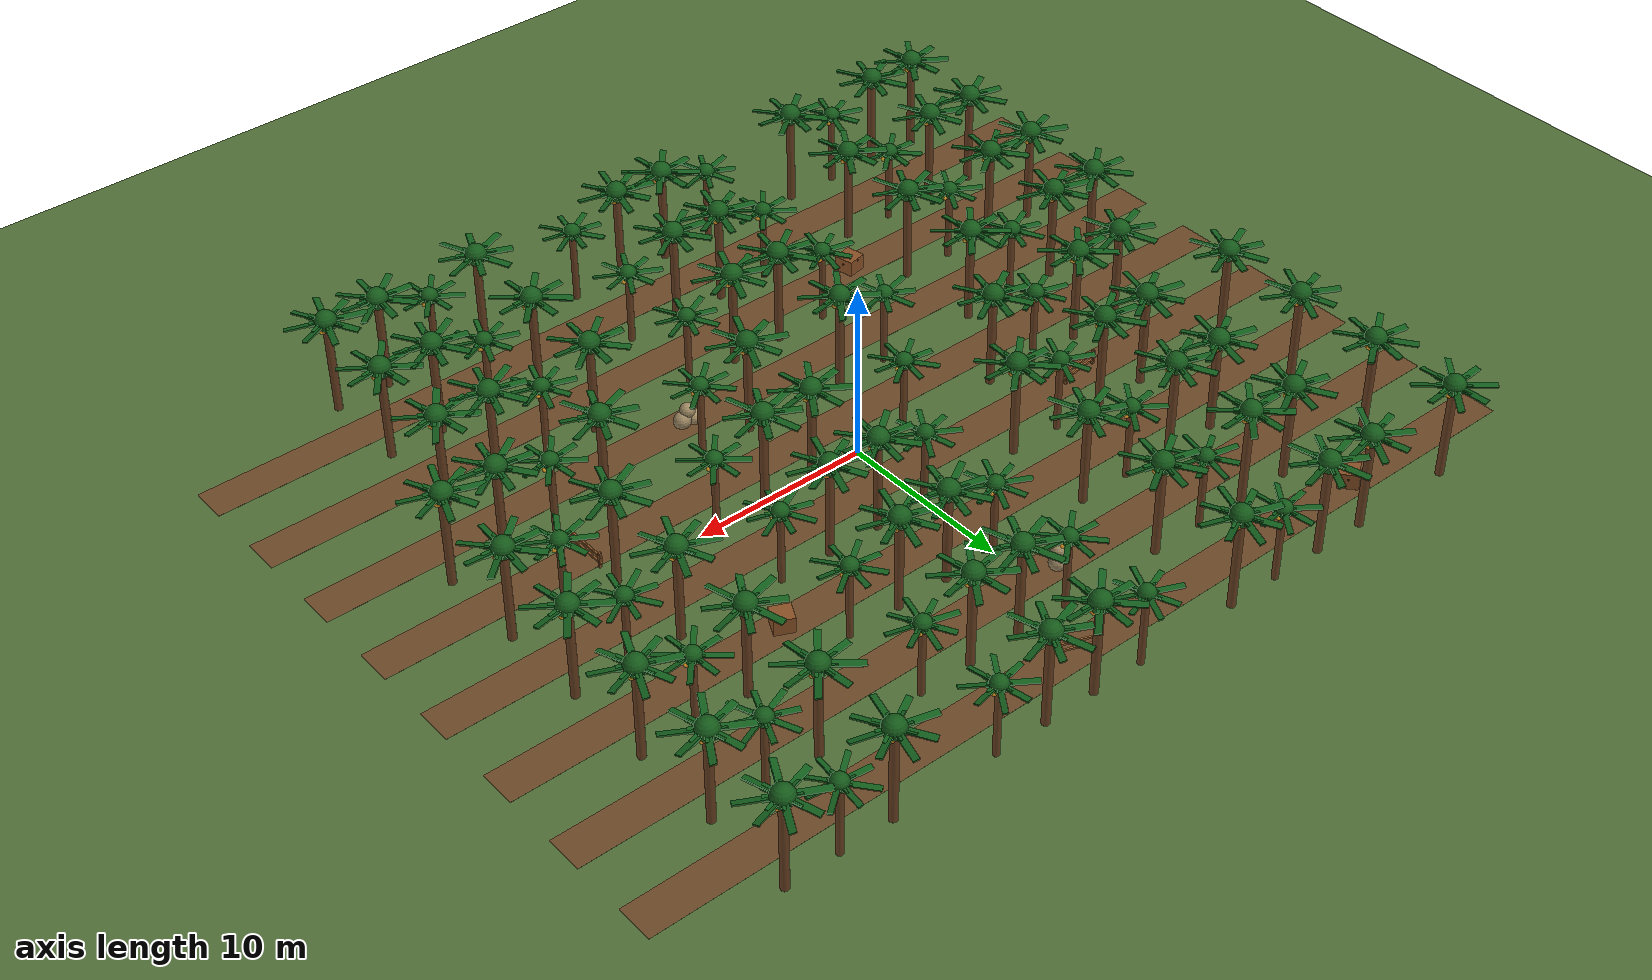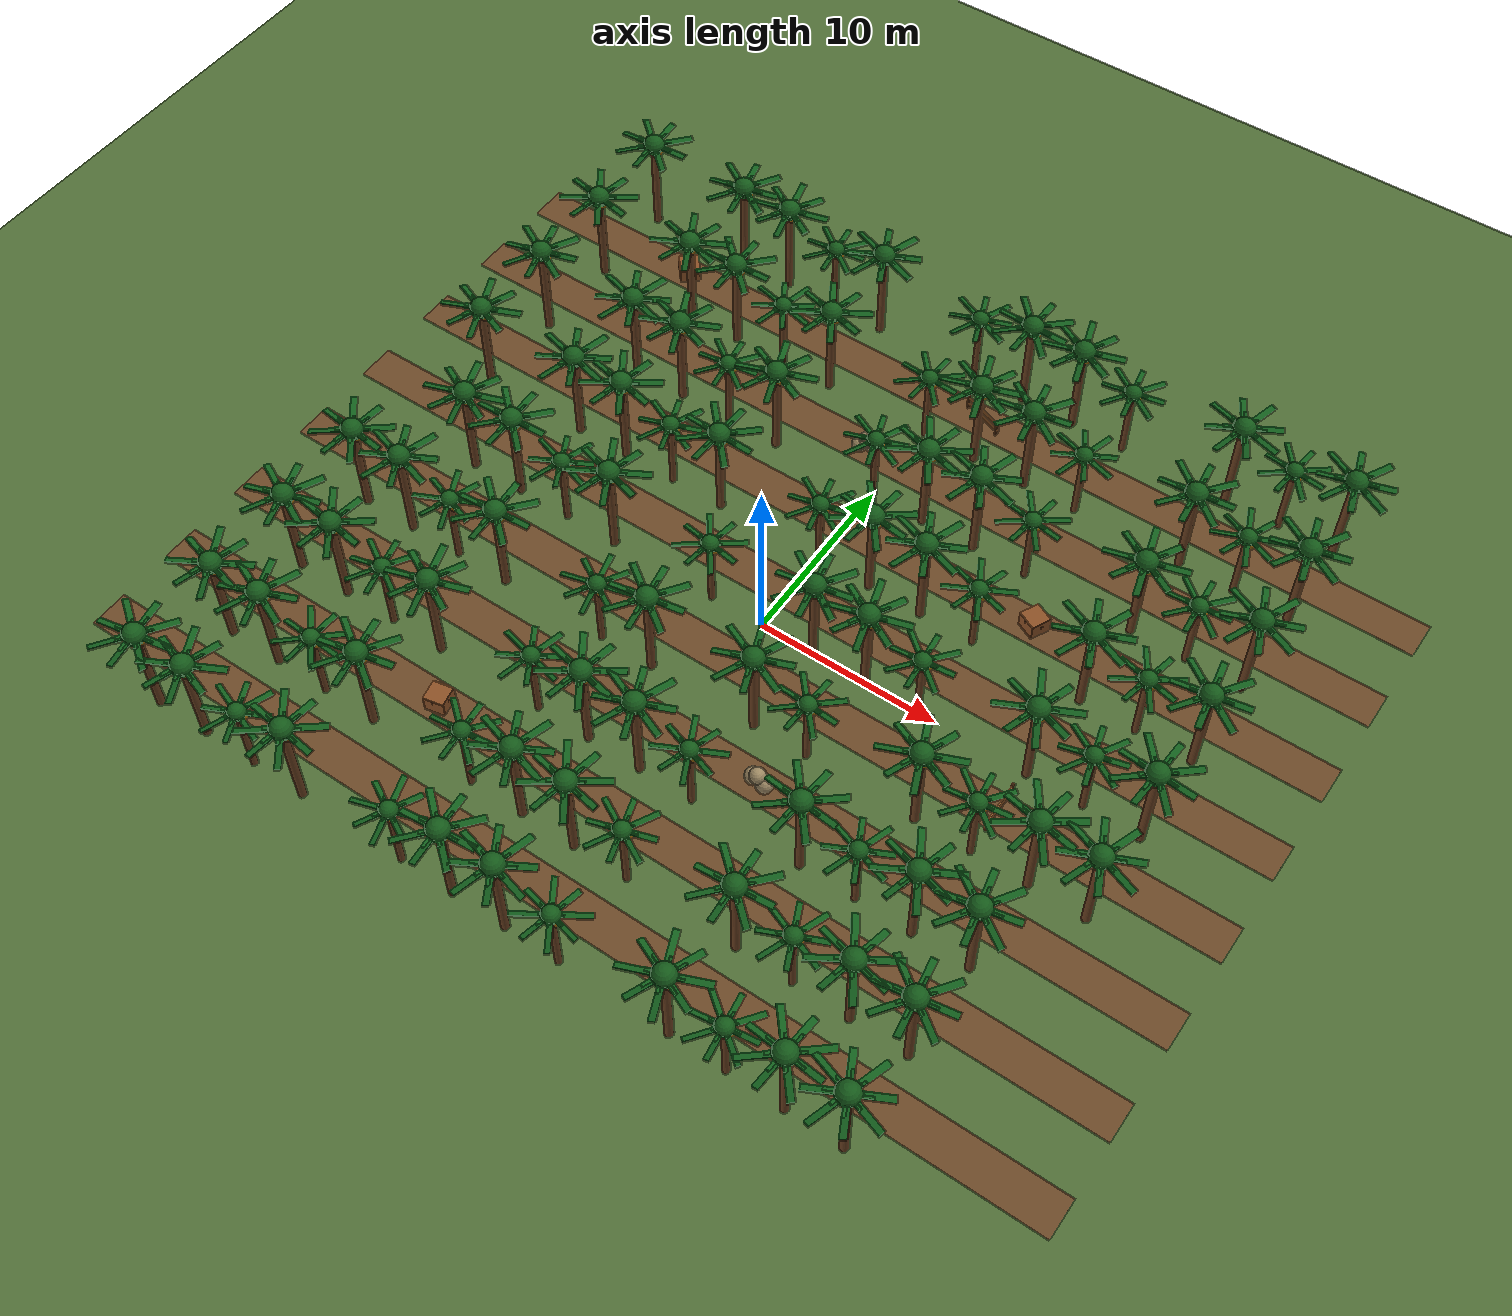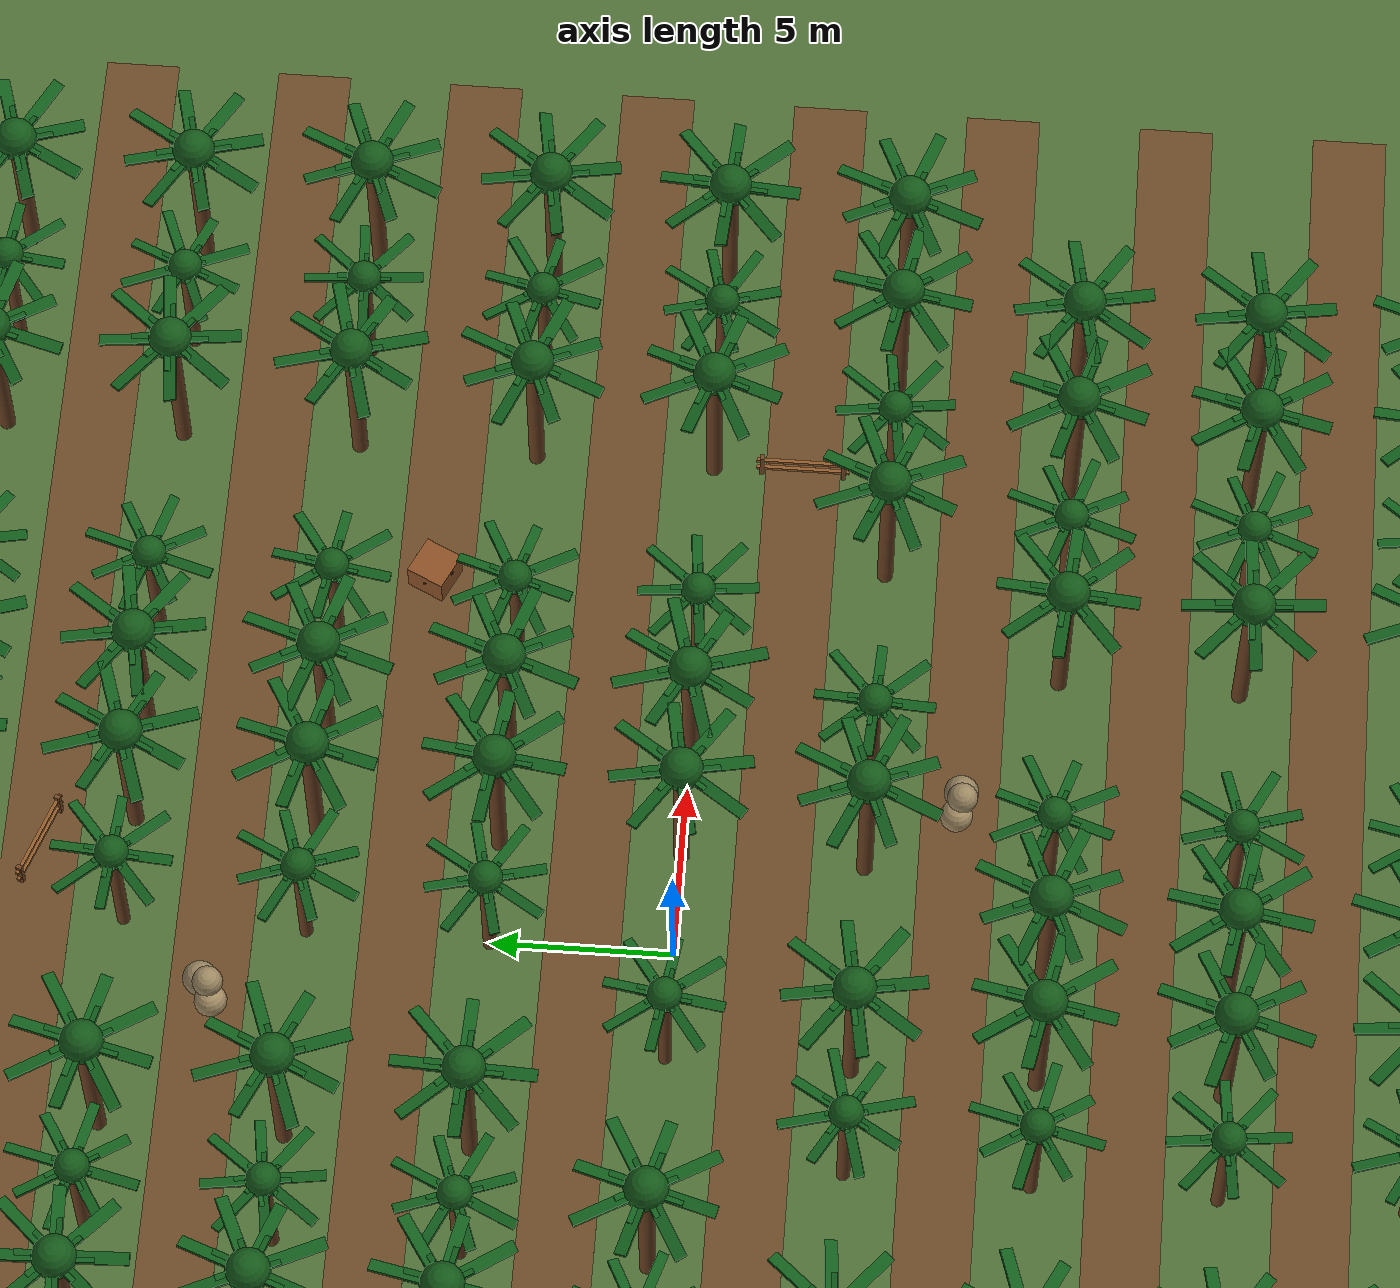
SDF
<sdf version="1.9">
 <world name="plantation">
  <physics name="uav_physics" type="ignored">
   <max_step_size>0.001</max_step_size>
   <real_time_factor>1.0</real_time_factor>
  </physics>
  <plugin filename="gz-sim-physics-system" name="gz::sim::systems::Physics"/>
  <plugin filename="gz-sim-sensors-system" name="gz::sim::systems::Sensors">
   <render_engine>ogre2</render_engine>
  </plugin>
  <plugin filename="gz-sim-scene-broadcaster-system" name="gz::sim::systems::SceneBroadcaster"/>
  <plugin filename="gz-sim-user-commands-system" name="gz::sim::systems::UserCommands"/>
  <scene>
   <ambient>0.36 0.38 0.40 1</ambient>
   <background>0.70 0.82 0.94 1</background>
   <shadows>true</shadows>
  </scene>
  <light type="directional" name="sun_key">
   <pose>-10 -10 18 0.35 0.55 -0.75</pose>
   <diffuse>0.95 0.90 0.78 1</diffuse>
   <specular>0.25 0.24 0.20 1</specular>
   <attenuation>
    <range>1000</range>
    <constant>0.9</constant>
    <linear>0.01</linear>
    <quadratic>0.001</quadratic>
   </attenuation>
   <direction>-0.55 0.25 -0.80</direction>
  </light>
  <model name="textured_ground">
   <static>true</static>
   <link name="ground">
    <collision name="collision">
     <geometry><plane><normal>0 0 1</normal><size>60 60</size></plane></geometry>
    </collision>
    <visual name="grass_soil">
     <geometry><plane><normal>0 0 1</normal><size>60 60</size></plane></geometry>
     <material>
      <ambient>0.26 0.34 0.18 1</ambient>
      <diffuse>0.32 0.44 0.22 1</diffuse>
      <specular>0.05 0.05 0.04 1</specular>
     </material>
    </visual>
   </link>
  </model>
  <model name="soil_lanes">
   <static>true</static>
   <link name="lanes">
    <visual name="lane_m17_5">
     <pose>0 -17.5 0.006 0 0 0</pose>
     <geometry><box><size>54 2.1 0.01</size></box></geometry>
     <material><ambient>0.30 0.20 0.11 1</ambient><diffuse>0.43 0.29 0.16 1</diffuse></material>
    </visual>
    <visual name="lane_m12_5">
     <pose>0 -12.5 0.006 0 0 0</pose>
     <geometry><box><size>54 2.1 0.01</size></box></geometry>
     <material><ambient>0.30 0.20 0.11 1</ambient><diffuse>0.43 0.29 0.16 1</diffuse></material>
    </visual>
    <visual name="lane_m7_5">
     <pose>0 -7.5 0.006 0 0 0</pose>
     <geometry><box><size>54 2.1 0.01</size></box></geometry>
     <material><ambient>0.30 0.20 0.11 1</ambient><diffuse>0.43 0.29 0.16 1</diffuse></material>
    </visual>
    <visual name="lane_m2_5">
     <pose>0 -2.5 0.006 0 0 0</pose>
     <geometry><box><size>54 2.1 0.01</size></box></geometry>
     <material><ambient>0.30 0.20 0.11 1</ambient><diffuse>0.43 0.29 0.16 1</diffuse></material>
    </visual>
    <visual name="lane_2_5">
     <pose>0 2.5 0.006 0 0 0</pose>
     <geometry><box><size>54 2.1 0.01</size></box></geometry>
     <material><ambient>0.30 0.20 0.11 1</ambient><diffuse>0.43 0.29 0.16 1</diffuse></material>
    </visual>
    <visual name="lane_7_5">
     <pose>0 7.5 0.006 0 0 0</pose>
     <geometry><box><size>54 2.1 0.01</size></box></geometry>
     <material><ambient>0.30 0.20 0.11 1</ambient><diffuse>0.43 0.29 0.16 1</diffuse></material>
    </visual>
    <visual name="lane_12_5">
     <pose>0 12.5 0.006 0 0 0</pose>
     <geometry><box><size>54 2.1 0.01</size></box></geometry>
     <material><ambient>0.30 0.20 0.11 1</ambient><diffuse>0.43 0.29 0.16 1</diffuse></material>
    </visual>
    <visual name="lane_17_5">
     <pose>0 17.5 0.006 0 0 0</pose>
     <geometry><box><size>54 2.1 0.01</size></box></geometry>
     <material><ambient>0.30 0.20 0.11 1</ambient><diffuse>0.43 0.29 0.16 1</diffuse></material>
    </visual>
   </link>
  </model>
  <include><name>tree_00_00</name><uri>model://oil_palm</uri><pose>-21 -20 0 0 0 0.18</pose></include>
  <include><name>tree_00_01</name><uri>model://oil_palm</uri><pose>-18 -20 0 0 0 -0.31</pose></include>
  <include><name>tree_00_02</name><uri>model://oil_palm_small</uri><pose>-15 -20 0 0 0 0.44</pose></include>
  <include><name>tree_00_03</name><uri>model://oil_palm</uri><pose>-12 -20 0 0 0 -0.12</pose></include>
  <include><name>tree_00_05</name><uri>model://oil_palm_small</uri><pose>-6 -20 0 0 0 -0.48</pose></include>
  <include><name>tree_00_06</name><uri>model://oil_palm</uri><pose>-3 -20 0 0 0 0.09</pose></include>
  <include><name>tree_00_07</name><uri>model://oil_palm</uri><pose>0 -20 0 0 0 0.53</pose></include>
  <include><name>tree_00_08</name><uri>model://oil_palm_small</uri><pose>3 -20 0 0 0 -0.21</pose></include>
  <include><name>tree_00_10</name><uri>model://oil_palm</uri><pose>9 -20 0 0 0 -0.40</pose></include>
  <include><name>tree_00_11</name><uri>model://oil_palm_small</uri><pose>12 -20 0 0 0 0.14</pose></include>
  <include><name>tree_00_12</name><uri>model://oil_palm</uri><pose>15 -20 0 0 0 -0.08</pose></include>
  <include><name>tree_00_13</name><uri>model://oil_palm</uri><pose>18 -20 0 0 0 0.47</pose></include>
  <include><name>tree_01_00</name><uri>model://oil_palm</uri><pose>-21 -15 0 0 0 -0.26</pose></include>
  <include><name>tree_01_01</name><uri>model://oil_palm</uri><pose>-18 -15 0 0 0 0.39</pose></include>
  <include><name>tree_01_02</name><uri>model://oil_palm_small</uri><pose>-15 -15 0 0 0 -0.05</pose></include>
  <include><name>tree_01_03</name><uri>model://oil_palm</uri><pose>-12 -15 0 0 0 0.21</pose></include>
  <include><name>tree_01_05</name><uri>model://oil_palm_small</uri><pose>-6 -15 0 0 0 0.11</pose></include>
  <include><name>tree_01_06</name><uri>model://oil_palm</uri><pose>-3 -15 0 0 0 0.50</pose></include>
  <include><name>tree_01_07</name><uri>model://oil_palm</uri><pose>0 -15 0 0 0 -0.17</pose></include>
  <include><name>tree_01_08</name><uri>model://oil_palm_small</uri><pose>3 -15 0 0 0 0.30</pose></include>
  <include><name>tree_01_10</name><uri>model://oil_palm</uri><pose>9 -15 0 0 0 0.07</pose></include>
  <include><name>tree_01_11</name><uri>model://oil_palm_small</uri><pose>12 -15 0 0 0 0.42</pose></include>
  <include><name>tree_01_12</name><uri>model://oil_palm</uri><pose>15 -15 0 0 0 -0.23</pose></include>
  <include><name>tree_01_13</name><uri>model://oil_palm</uri><pose>18 -15 0 0 0 0.16</pose></include>
  <include><name>tree_02_00</name><uri>model://oil_palm</uri><pose>-21 -10 0 0 0 0.33</pose></include>
  <include><name>tree_02_01</name><uri>model://oil_palm</uri><pose>-18 -10 0 0 0 -0.14</pose></include>
  <include><name>tree_02_02</name><uri>model://oil_palm_small</uri><pose>-15 -10 0 0 0 0.25</pose></include>
  <include><name>tree_02_03</name><uri>model://oil_palm</uri><pose>-12 -10 0 0 0 -0.47</pose></include>
  <include><name>tree_02_05</name><uri>model://oil_palm_small</uri><pose>-6 -10 0 0 0 0.55</pose></include>
  <include><name>tree_02_06</name><uri>model://oil_palm</uri><pose>-3 -10 0 0 0 -0.19</pose></include>
  <include><name>tree_02_07</name><uri>model://oil_palm</uri><pose>0 -10 0 0 0 0.40</pose></include>
  <include><name>tree_02_08</name><uri>model://oil_palm_small</uri><pose>3 -10 0 0 0 -0.32</pose></include>
  <include><name>tree_02_10</name><uri>model://oil_palm</uri><pose>9 -10 0 0 0 -0.09</pose></include>
  <include><name>tree_02_11</name><uri>model://oil_palm_small</uri><pose>12 -10 0 0 0 0.46</pose></include>
  <include><name>tree_02_12</name><uri>model://oil_palm</uri><pose>15 -10 0 0 0 -0.28</pose></include>
  <include><name>tree_02_13</name><uri>model://oil_palm</uri><pose>18 -10 0 0 0 0.20</pose></include>
  <include><name>tree_03_00</name><uri>model://oil_palm</uri><pose>-21 -5 0 0 0 -0.11</pose></include>
  <include><name>tree_03_01</name><uri>model://oil_palm</uri><pose>-18 -5 0 0 0 0.49</pose></include>
  <include><name>tree_03_02</name><uri>model://oil_palm_small</uri><pose>-15 -5 0 0 0 -0.34</pose></include>
  <include><name>tree_03_03</name><uri>model://oil_palm</uri><pose>-12 -5 0 0 0 0.08</pose></include>
  <include><name>tree_03_05</name><uri>model://oil_palm_small</uri><pose>-6 -5 0 0 0 -0.53</pose></include>
  <include><name>tree_03_06</name><uri>model://oil_palm</uri><pose>-3 -5 0 0 0 0.17</pose></include>
  <include><name>tree_03_08</name><uri>model://oil_palm</uri><pose>3 -5 0 0 0 0.37</pose></include>
  <include><name>tree_03_09</name><uri>model://oil_palm_small</uri><pose>6 -5 0 0 0 -0.06</pose></include>
  <include><name>tree_03_11</name><uri>model://oil_palm</uri><pose>12 -5 0 0 0 -0.39</pose></include>
  <include><name>tree_03_12</name><uri>model://oil_palm_small</uri><pose>15 -5 0 0 0 0.13</pose></include>
  <include><name>tree_03_13</name><uri>model://oil_palm</uri><pose>18 -5 0 0 0 -0.18</pose></include>
  <include><name>tree_03_14</name><uri>model://oil_palm</uri><pose>21 -5 0 0 0 0.43</pose></include>
  <include><name>tree_04_01</name><uri>model://oil_palm</uri><pose>-18 0 0 0 0 -0.45</pose></include>
  <include><name>tree_04_02</name><uri>model://oil_palm</uri><pose>-15 0 0 0 0 0.05</pose></include>
  <include><name>tree_04_03</name><uri>model://oil_palm_small</uri><pose>-12 0 0 0 0 0.48</pose></include>
  <include><name>tree_04_04</name><uri>model://oil_palm</uri><pose>-9 0 0 0 0 -0.27</pose></include>
  <include><name>tree_04_06</name><uri>model://oil_palm_small</uri><pose>-3 0 0 0 0 -0.15</pose></include>
  <include><name>tree_04_08</name><uri>model://oil_palm</uri><pose>3 0 0 0 0 0.19</pose></include>
  <include><name>tree_04_09</name><uri>model://oil_palm</uri><pose>6 0 0 0 0 -0.50</pose></include>
  <include><name>tree_04_10</name><uri>model://oil_palm_small</uri><pose>9 0 0 0 0 0.10</pose></include>
  <include><name>tree_04_12</name><uri>model://oil_palm</uri><pose>15 0 0 0 0 -0.33</pose></include>
  <include><name>tree_04_13</name><uri>model://oil_palm_small</uri><pose>18 0 0 0 0 0.26</pose></include>
  <include><name>tree_04_14</name><uri>model://oil_palm</uri><pose>21 0 0 0 0 -0.07</pose></include>
  <include><name>tree_05_00</name><uri>model://oil_palm</uri><pose>-21 5 0 0 0 -0.38</pose></include>
  <include><name>tree_05_02</name><uri>model://oil_palm</uri><pose>-15 5 0 0 0 0.54</pose></include>
  <include><name>tree_05_03</name><uri>model://oil_palm</uri><pose>-12 5 0 0 0 -0.20</pose></include>
  <include><name>tree_05_04</name><uri>model://oil_palm_small</uri><pose>-9 5 0 0 0 0.35</pose></include>
  <include><name>tree_05_05</name><uri>model://oil_palm</uri><pose>-6 5 0 0 0 -0.04</pose></include>
  <include><name>tree_05_07</name><uri>model://oil_palm_small</uri><pose>0 5 0 0 0 0.24</pose></include>
  <include><name>tree_05_08</name><uri>model://oil_palm</uri><pose>3 5 0 0 0 -0.13</pose></include>
  <include><name>tree_05_09</name><uri>model://oil_palm</uri><pose>6 5 0 0 0 0.45</pose></include>
  <include><name>tree_05_10</name><uri>model://oil_palm_small</uri><pose>9 5 0 0 0 -0.30</pose></include>
  <include><name>tree_05_12</name><uri>model://oil_palm</uri><pose>15 5 0 0 0 0.39</pose></include>
  <include><name>tree_05_13</name><uri>model://oil_palm_small</uri><pose>18 5 0 0 0 -0.22</pose></include>
  <include><name>tree_05_14</name><uri>model://oil_palm</uri><pose>21 5 0 0 0 0.17</pose></include>
  <include><name>tree_06_00</name><uri>model://oil_palm</uri><pose>-21 10 0 0 0 0.29</pose></include>
  <include><name>tree_06_02</name><uri>model://oil_palm</uri><pose>-15 10 0 0 0 0.51</pose></include>
  <include><name>tree_06_03</name><uri>model://oil_palm</uri><pose>-12 10 0 0 0 -0.35</pose></include>
  <include><name>tree_06_04</name><uri>model://oil_palm_small</uri><pose>-9 10 0 0 0 0.15</pose></include>
  <include><name>tree_06_05</name><uri>model://oil_palm</uri><pose>-6 10 0 0 0 -0.43</pose></include>
  <include><name>tree_06_07</name><uri>model://oil_palm_small</uri><pose>0 10 0 0 0 0.33</pose></include>
  <include><name>tree_06_08</name><uri>model://oil_palm</uri><pose>3 10 0 0 0 -0.25</pose></include>
  <include><name>tree_06_09</name><uri>model://oil_palm</uri><pose>6 10 0 0 0 0.48</pose></include>
  <include><name>tree_06_10</name><uri>model://oil_palm_small</uri><pose>9 10 0 0 0 -0.16</pose></include>
  <include><name>tree_06_12</name><uri>model://oil_palm</uri><pose>15 10 0 0 0 -0.52</pose></include>
  <include><name>tree_06_13</name><uri>model://oil_palm_small</uri><pose>18 10 0 0 0 0.08</pose></include>
  <include><name>tree_06_14</name><uri>model://oil_palm</uri><pose>21 10 0 0 0 0.37</pose></include>
  <include><name>tree_07_00</name><uri>model://oil_palm</uri><pose>-21 15 0 0 0 -0.18</pose></include>
  <include><name>tree_07_02</name><uri>model://oil_palm</uri><pose>-15 15 0 0 0 -0.29</pose></include>
  <include><name>tree_07_03</name><uri>model://oil_palm</uri><pose>-12 15 0 0 0 0.04</pose></include>
  <include><name>tree_07_04</name><uri>model://oil_palm_small</uri><pose>-9 15 0 0 0 0.56</pose></include>
  <include><name>tree_07_05</name><uri>model://oil_palm</uri><pose>-6 15 0 0 0 -0.24</pose></include>
  <include><name>tree_07_07</name><uri>model://oil_palm_small</uri><pose>0 15 0 0 0 -0.07</pose></include>
  <include><name>tree_07_08</name><uri>model://oil_palm</uri><pose>3 15 0 0 0 -0.46</pose></include>
  <include><name>tree_07_09</name><uri>model://oil_palm</uri><pose>6 15 0 0 0 0.18</pose></include>
  <include><name>tree_07_10</name><uri>model://oil_palm_small</uri><pose>9 15 0 0 0 0.50</pose></include>
  <include><name>tree_07_12</name><uri>model://oil_palm</uri><pose>15 15 0 0 0 0.11</pose></include>
  <include><name>tree_07_13</name><uri>model://oil_palm_small</uri><pose>18 15 0 0 0 -0.40</pose></include>
  <include><name>tree_07_14</name><uri>model://oil_palm</uri><pose>21 15 0 0 0 0.25</pose></include>
  <include><name>tree_08_00</name><uri>model://oil_palm</uri><pose>-21 20 0 0 0 0.07</pose></include>
  <include><name>tree_08_02</name><uri>model://oil_palm</uri><pose>-15 20 0 0 0 0.23</pose></include>
  <include><name>tree_08_03</name><uri>model://oil_palm</uri><pose>-12 20 0 0 0 -0.54</pose></include>
  <include><name>tree_08_04</name><uri>model://oil_palm_small</uri><pose>-9 20 0 0 0 0.14</pose></include>
  <include><name>tree_08_05</name><uri>model://oil_palm</uri><pose>-6 20 0 0 0 0.44</pose></include>
  <include><name>tree_08_07</name><uri>model://oil_palm_small</uri><pose>0 20 0 0 0 0.36</pose></include>
  <include><name>tree_08_08</name><uri>model://oil_palm</uri><pose>3 20 0 0 0 -0.03</pose></include>
  <include><name>tree_08_09</name><uri>model://oil_palm</uri><pose>6 20 0 0 0 -0.48</pose></include>
  <include><name>tree_08_10</name><uri>model://oil_palm_small</uri><pose>9 20 0 0 0 0.19</pose></include>
  <include><name>tree_08_12</name><uri>model://oil_palm</uri><pose>15 20 0 0 0 0.52</pose></include>
  <include><name>tree_08_13</name><uri>model://oil_palm_small</uri><pose>18 20 0 0 0 -0.12</pose></include>
  <include><name>tree_08_14</name><uri>model://oil_palm</uri><pose>21 20 0 0 0 0.30</pose></include>
  <include><name>crate_01</name><uri>model://wooden_crate</uri><pose>-10 -12.5 0 0 0 0.20</pose></include>
  <include><name>crate_02</name><uri>model://wooden_crate</uri><pose>11 7.5 0 0 0 -0.45</pose></include>
  <include><name>crate_03</name><uri>model://wooden_crate</uri><pose>-17 17.5 0 0 0 0.70</pose></include>
  <include><name>sacks_01</name><uri>model://sack_stack</uri><pose>5 -7.5 0 0 0 -0.25</pose></include>
  <include><name>sacks_02</name><uri>model://sack_stack</uri><pose>-2 12.5 0 0 0 0.40</pose></include>
  <include><name>fence_01</name><uri>model://low_fence</uri><pose>15 -2.5 0 0 0 1.5708</pose></include>
  <include><name>fence_02</name><uri>model://low_fence</uri><pose>-13 2.5 0 0 0 0.15</pose></include>
  <include><name>fence_03</name><uri>model://low_fence</uri><pose>2 17.5 0 0 0 -0.35</pose></include>
 </world>
</sdf>

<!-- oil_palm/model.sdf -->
<sdf version="1.9">
  <model name="oil_palm">
    <static>true</static>
    <link name="trunk">
      <pose>0 0 2.60 0 0 0</pose>
      <collision name="collision">
        <geometry><cylinder><radius>0.22</radius><length>5.20</length></cylinder></geometry>
      </collision>
      <visual name="ribbed_trunk">
        <geometry><cylinder><radius>0.22</radius><length>5.20</length></cylinder></geometry>
        <material><ambient>0.28 0.16 0.08 1</ambient><diffuse>0.40 0.24 0.12 1</diffuse><specular>0.03 0.02 0.01 1</specular></material>
      </visual>
    </link>
    <link name="crown">
      <pose>0 0 0 0 0 0</pose>
      <collision name="crown_collision">
        <pose>0 0 5.55 0 0 0</pose>
        <geometry><sphere><radius>1.26</radius></sphere></geometry>
      </collision>
      <visual name="crown_core">
        <pose>0 0 5.55 0 0 0</pose>
        <geometry><sphere><radius>0.60</radius></sphere></geometry>
        <material><ambient>0.04 0.22 0.07 1</ambient><diffuse>0.08 0.35 0.10 1</diffuse></material>
      </visual>
      <visual name="frond_00">
        <pose>0.45 0 5.55 0.22 0 0</pose>
        <geometry><box><size>3.00 0.34 0.08</size></box></geometry>
        <material><ambient>0.04 0.23 0.08 1</ambient><diffuse>0.07 0.37 0.11 1</diffuse><specular>0.02 0.05 0.02 1</specular></material>
      </visual>
      <visual name="frond_01">
        <pose>0.45 0.45 5.55 0.22 0 0.78539816339</pose>
        <geometry><box><size>3.00 0.34 0.08</size></box></geometry>
        <material><ambient>0.04 0.23 0.08 1</ambient><diffuse>0.07 0.37 0.11 1</diffuse><specular>0.02 0.05 0.02 1</specular></material>
      </visual>
      <visual name="frond_02">
        <pose>0 0.45 5.55 0.22 0 1.57079632679</pose>
        <geometry><box><size>3.00 0.34 0.08</size></box></geometry>
        <material><ambient>0.04 0.23 0.08 1</ambient><diffuse>0.07 0.37 0.11 1</diffuse><specular>0.02 0.05 0.02 1</specular></material>
      </visual>
      <visual name="frond_03">
        <pose>-0.45 0.45 5.55 0.22 0 2.35619449019</pose>
        <geometry><box><size>3.00 0.34 0.08</size></box></geometry>
        <material><ambient>0.04 0.23 0.08 1</ambient><diffuse>0.07 0.37 0.11 1</diffuse><specular>0.02 0.05 0.02 1</specular></material>
      </visual>
      <visual name="frond_04">
        <pose>-0.45 0 5.55 0.22 0 3.14159265359</pose>
        <geometry><box><size>3.00 0.34 0.08</size></box></geometry>
        <material><ambient>0.04 0.23 0.08 1</ambient><diffuse>0.07 0.37 0.11 1</diffuse><specular>0.02 0.05 0.02 1</specular></material>
      </visual>
      <visual name="frond_05">
        <pose>-0.45 -0.45 5.55 0.22 0 -2.35619449019</pose>
        <geometry><box><size>3.00 0.34 0.08</size></box></geometry>
        <material><ambient>0.04 0.23 0.08 1</ambient><diffuse>0.07 0.37 0.11 1</diffuse><specular>0.02 0.05 0.02 1</specular></material>
      </visual>
      <visual name="frond_06">
        <pose>0 -0.45 5.55 0.22 0 -1.57079632679</pose>
        <geometry><box><size>3.00 0.34 0.08</size></box></geometry>
        <material><ambient>0.04 0.23 0.08 1</ambient><diffuse>0.07 0.37 0.11 1</diffuse><specular>0.02 0.05 0.02 1</specular></material>
      </visual>
      <visual name="frond_07">
        <pose>0.45 -0.45 5.55 0.22 0 -0.78539816339</pose>
        <geometry><box><size>3.00 0.34 0.08</size></box></geometry>
        <material><ambient>0.04 0.23 0.08 1</ambient><diffuse>0.07 0.37 0.11 1</diffuse><specular>0.02 0.05 0.02 1</specular></material>
      </visual>
      <visual name="inflorescence_target">
        <pose>0.35 0 5.18 0 0 0</pose>
        <geometry><sphere><radius>0.18</radius></sphere></geometry>
        <material><ambient>0.65 0.45 0.08 1</ambient><diffuse>0.95 0.67 0.16 1</diffuse><specular>0.08 0.05 0.02 1</specular></material>
      </visual>
    </link>
  </model>
</sdf>

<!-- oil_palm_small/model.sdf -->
<sdf version="1.9">
  <model name="oil_palm_small">
    <static>true</static>
    <link name="trunk">
      <pose>0 0 2.00 0 0 0</pose>
      <collision name="collision">
        <geometry><cylinder><radius>0.18</radius><length>4.00</length></cylinder></geometry>
      </collision>
      <visual name="ribbed_trunk">
        <geometry><cylinder><radius>0.18</radius><length>4.00</length></cylinder></geometry>
        <material><ambient>0.28 0.16 0.08 1</ambient><diffuse>0.40 0.24 0.12 1</diffuse><specular>0.03 0.02 0.01 1</specular></material>
      </visual>
    </link>
    <link name="crown">
      <pose>0 0 0 0 0 0</pose>
      <collision name="crown_collision">
        <pose>0 0 4.30 0 0 0</pose>
        <geometry><sphere><radius>1.01</radius></sphere></geometry>
      </collision>
      <visual name="crown_core">
        <pose>0 0 4.30 0 0 0</pose>
        <geometry><sphere><radius>0.48</radius></sphere></geometry>
        <material><ambient>0.04 0.22 0.07 1</ambient><diffuse>0.08 0.35 0.10 1</diffuse></material>
      </visual>
      <visual name="frond_00">
        <pose>0.45 0 4.30 0.22 0 0</pose>
        <geometry><box><size>2.40 0.28 0.08</size></box></geometry>
        <material><ambient>0.04 0.23 0.08 1</ambient><diffuse>0.07 0.37 0.11 1</diffuse><specular>0.02 0.05 0.02 1</specular></material>
      </visual>
      <visual name="frond_01">
        <pose>0.45 0.45 4.30 0.22 0 0.78539816339</pose>
        <geometry><box><size>2.40 0.28 0.08</size></box></geometry>
        <material><ambient>0.04 0.23 0.08 1</ambient><diffuse>0.07 0.37 0.11 1</diffuse><specular>0.02 0.05 0.02 1</specular></material>
      </visual>
      <visual name="frond_02">
        <pose>0 0.45 4.30 0.22 0 1.57079632679</pose>
        <geometry><box><size>2.40 0.28 0.08</size></box></geometry>
        <material><ambient>0.04 0.23 0.08 1</ambient><diffuse>0.07 0.37 0.11 1</diffuse><specular>0.02 0.05 0.02 1</specular></material>
      </visual>
      <visual name="frond_03">
        <pose>-0.45 0.45 4.30 0.22 0 2.35619449019</pose>
        <geometry><box><size>2.40 0.28 0.08</size></box></geometry>
        <material><ambient>0.04 0.23 0.08 1</ambient><diffuse>0.07 0.37 0.11 1</diffuse><specular>0.02 0.05 0.02 1</specular></material>
      </visual>
      <visual name="frond_04">
        <pose>-0.45 0 4.30 0.22 0 3.14159265359</pose>
        <geometry><box><size>2.40 0.28 0.08</size></box></geometry>
        <material><ambient>0.04 0.23 0.08 1</ambient><diffuse>0.07 0.37 0.11 1</diffuse><specular>0.02 0.05 0.02 1</specular></material>
      </visual>
      <visual name="frond_05">
        <pose>-0.45 -0.45 4.30 0.22 0 -2.35619449019</pose>
        <geometry><box><size>2.40 0.28 0.08</size></box></geometry>
        <material><ambient>0.04 0.23 0.08 1</ambient><diffuse>0.07 0.37 0.11 1</diffuse><specular>0.02 0.05 0.02 1</specular></material>
      </visual>
      <visual name="frond_06">
        <pose>0 -0.45 4.30 0.22 0 -1.57079632679</pose>
        <geometry><box><size>2.40 0.28 0.08</size></box></geometry>
        <material><ambient>0.04 0.23 0.08 1</ambient><diffuse>0.07 0.37 0.11 1</diffuse><specular>0.02 0.05 0.02 1</specular></material>
      </visual>
      <visual name="frond_07">
        <pose>0.45 -0.45 4.30 0.22 0 -0.78539816339</pose>
        <geometry><box><size>2.40 0.28 0.08</size></box></geometry>
        <material><ambient>0.04 0.23 0.08 1</ambient><diffuse>0.07 0.37 0.11 1</diffuse><specular>0.02 0.05 0.02 1</specular></material>
      </visual>
      <visual name="inflorescence_target">
        <pose>0.35 0 4.00 0 0 0</pose>
        <geometry><sphere><radius>0.15</radius></sphere></geometry>
        <material><ambient>0.65 0.45 0.08 1</ambient><diffuse>0.95 0.67 0.16 1</diffuse><specular>0.08 0.05 0.02 1</specular></material>
      </visual>
    </link>
  </model>
</sdf>

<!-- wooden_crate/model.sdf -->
<sdf version="1.6">
  <model name="wooden_crate">
    <static>true</static>
    <link name="crate">
      <pose>0 0 0.45 0 0 0</pose>
      <collision name="collision">
        <geometry>
          <box>
            <size>1.1 1.1 0.9</size>
          </box>
        </geometry>
      </collision>
      <visual name="body">
        <geometry>
          <box>
            <size>1.1 1.1 0.9</size>
          </box>
        </geometry>
        <material>
          <ambient>0.42 0.24 0.11 1</ambient>
          <diffuse>0.55 0.32 0.15 1</diffuse>
        </material>
      </visual>
      <visual name="slat_x">
        <pose>0 0 0.15 0 0 0</pose>
        <geometry>
          <box>
            <size>1.16 0.08 0.08</size>
          </box>
        </geometry>
        <material>
          <ambient>0.26 0.14 0.06 1</ambient>
          <diffuse>0.34 0.18 0.08 1</diffuse>
        </material>
      </visual>
      <visual name="slat_y">
        <pose>0 0 0.35 0 0 1.5708</pose>
        <geometry>
          <box>
            <size>1.16 0.08 0.08</size>
          </box>
        </geometry>
        <material>
          <ambient>0.26 0.14 0.06 1</ambient>
          <diffuse>0.34 0.18 0.08 1</diffuse>
        </material>
      </visual>
    </link>
  </model>
</sdf>

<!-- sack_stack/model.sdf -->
<sdf version="1.6">
  <model name="sack_stack">
    <static>true</static>
    <link name="sacks">
      <pose>0 0 0 0 0 0</pose>
      <collision name="collision">
        <pose>0 0 0.35 0 0 0</pose>
        <geometry>
          <box>
            <size>1.6 0.9 0.7</size>
          </box>
        </geometry>
      </collision>
      <visual name="sack_1">
        <pose>-0.35 0 0.22 0.04 0.10 0.12</pose>
        <geometry>
          <sphere>
            <radius>0.45</radius>
          </sphere>
        </geometry>
        <material>
          <ambient>0.52 0.45 0.32 1</ambient>
          <diffuse>0.65 0.56 0.40 1</diffuse>
        </material>
      </visual>
      <visual name="sack_2">
        <pose>0.35 0.08 0.25 -0.05 0.08 -0.18</pose>
        <geometry>
          <sphere>
            <radius>0.48</radius>
          </sphere>
        </geometry>
        <material>
          <ambient>0.48 0.41 0.30 1</ambient>
          <diffuse>0.60 0.52 0.38 1</diffuse>
        </material>
      </visual>
      <visual name="sack_3">
        <pose>0.0 -0.05 0.70 0.02 -0.08 0.35</pose>
        <geometry>
          <sphere>
            <radius>0.42</radius>
          </sphere>
        </geometry>
        <material>
          <ambient>0.50 0.43 0.31 1</ambient>
          <diffuse>0.62 0.54 0.39 1</diffuse>
        </material>
      </visual>
    </link>
  </model>
</sdf>

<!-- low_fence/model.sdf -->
<sdf version="1.6">
  <model name="low_fence">
    <static>true</static>
    <link name="fence">
      <pose>0 0 0 0 0 0</pose>
      <collision name="collision">
        <pose>0 0 0.45 0 0 0</pose>
        <geometry>
          <box>
            <size>2.6 0.12 0.9</size>
          </box>
        </geometry>
      </collision>
      <visual name="rail_low">
        <pose>0 0 0.32 0 0 0</pose>
        <geometry>
          <box>
            <size>2.6 0.10 0.10</size>
          </box>
        </geometry>
        <material>
          <ambient>0.45 0.28 0.13 1</ambient>
          <diffuse>0.58 0.36 0.17 1</diffuse>
        </material>
      </visual>
      <visual name="rail_high">
        <pose>0 0 0.72 0 0 0</pose>
        <geometry>
          <box>
            <size>2.6 0.10 0.10</size>
          </box>
        </geometry>
        <material>
          <ambient>0.45 0.28 0.13 1</ambient>
          <diffuse>0.58 0.36 0.17 1</diffuse>
        </material>
      </visual>
      <visual name="post_left">
        <pose>-1.15 0 0.45 0 0 0</pose>
        <geometry>
          <box>
            <size>0.12 0.16 0.9</size>
          </box>
        </geometry>
        <material>
          <ambient>0.36 0.21 0.10 1</ambient>
          <diffuse>0.45 0.27 0.13 1</diffuse>
        </material>
      </visual>
      <visual name="post_right">
        <pose>1.15 0 0.45 0 0 0</pose>
        <geometry>
          <box>
            <size>0.12 0.16 0.9</size>
          </box>
        </geometry>
        <material>
          <ambient>0.36 0.21 0.10 1</ambient>
          <diffuse>0.45 0.27 0.13 1</diffuse>
        </material>
      </visual>
    </link>
  </model>
</sdf>
